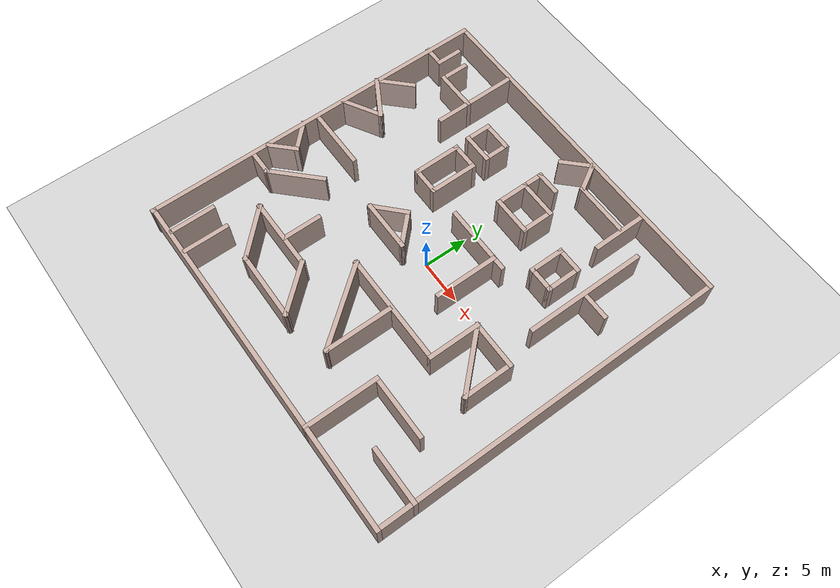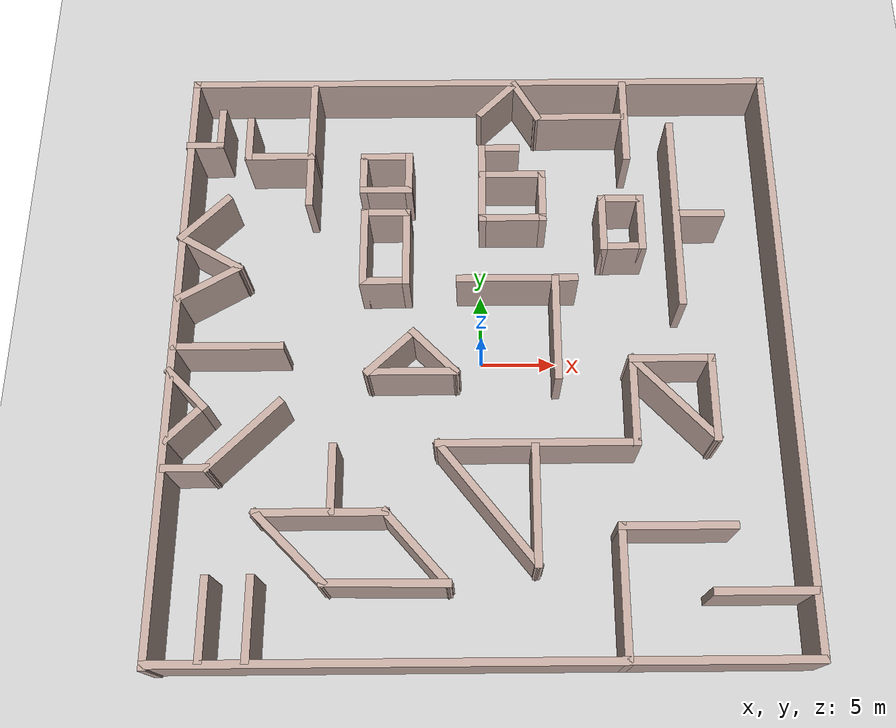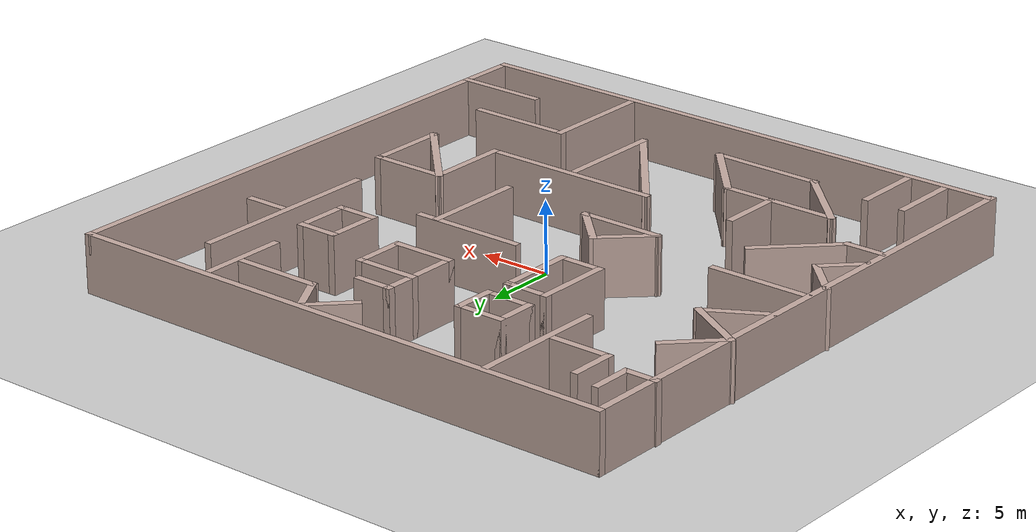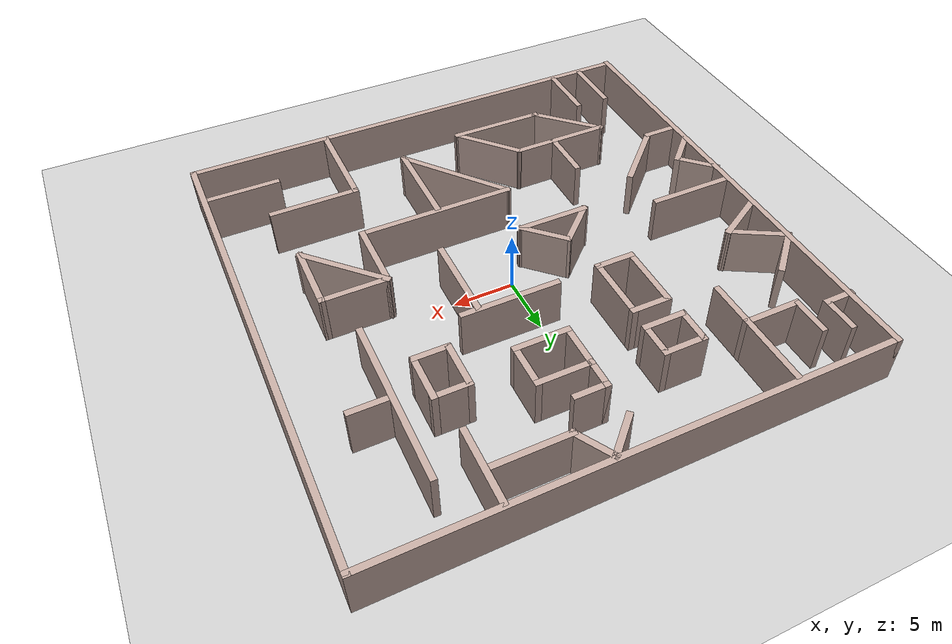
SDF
<sdf version="1.7">
 <world name="default">
  <plugin name="ros_interface_plugin" filename="librotors_gazebo_ros_interface_plugin.so"/>
  <light name="sun" type="directional">
   <pose>0 0 10 0 -0 0</pose>
   <diffuse>0.8 0.8 0.8 1</diffuse>
   <specular>0.2 0.2 0.2 1</specular>
   <attenuation>
    <range>1000</range>
    <constant>0.9</constant>
    <linear>0.01</linear>
    <quadratic>0.001</quadratic>
   </attenuation>
   <direction>-0.5 0.1 -0.9</direction>
   <spot><inner_angle>0</inner_angle><outer_angle>0</outer_angle><falloff>0</falloff></spot>
  </light>
  <model name="ground_plane">
   <static>1</static>
   <link name="link">
    <collision name="collision">
     <geometry><plane><normal>0 0 1</normal><size>100 100</size></plane></geometry>
     <surface><friction><ode><mu>100</mu><mu2>50</mu2></ode></friction></surface>
    </collision>
    <visual name="visual">
     <cast_shadows>0</cast_shadows>
     <geometry><plane><normal>0 0 1</normal><size>100 100</size></plane></geometry>
     <material>
      <script><uri>file://media/materials/scripts/gazebo.material</uri><name>Gazebo/Grey</name></script>
     </material>
    </visual>
   </link>
  </model>
  <gravity>0 0 -9.8</gravity>
  <magnetic_field>6e-06 2.3e-05 -4.2e-05</magnetic_field>
  <atmosphere type="adiabatic"/>
  <physics type="ode">
   <max_step_size>0.001</max_step_size>
   <real_time_factor>1</real_time_factor>
   <real_time_update_rate>1000</real_time_update_rate>
  </physics>
  <scene><ambient>0.4 0.4 0.4 1</ambient><background>0.7 0.7 0.7 1</background><shadows>1</shadows></scene>
  <spherical_coordinates>
   <surface_model>EARTH_WGS84</surface_model>
   <latitude_deg>0</latitude_deg>
   <longitude_deg>0</longitude_deg>
   <elevation>0</elevation>
   <heading_deg>0</heading_deg>
  </spherical_coordinates>
  <model name="Untitled">
   <pose>-0.092304 -0.038631 0 0 -0 0</pose>
   <link name="Wall_101">
    <collision name="Wall_101_Collision">
     <geometry><box><size>4.85046 0.5 4</size></box></geometry>
     <pose>0 0 2 0 -0 0</pose>
    </collision>
    <visual name="Wall_101_Visual">
     <pose>0 0 2 0 -0 0</pose>
     <geometry><box><size>4.85046 0.5 4</size></box></geometry>
     <material>
      <script><uri>file://media/materials/scripts/gazebo.material</uri><name>Gazebo/Grey</name></script>
      <ambient>0.760784 0.662745 0.627451 1</ambient>
     </material>
     <meta><layer>0</layer></meta>
    </visual>
    <pose>-13.7207 14.1376 0 0 -0 3.14159</pose>
   </link>
   <link name="Wall_102">
    <collision name="Wall_102_Collision">
     <geometry><box><size>3.34967 0.5 4</size></box></geometry>
     <pose>0 0 2 0 -0 0</pose>
    </collision>
    <visual name="Wall_102_Visual">
     <pose>0 0 2 0 -0 0</pose>
     <geometry><box><size>3.34967 0.5 4</size></box></geometry>
     <material>
      <script><uri>file://media/materials/scripts/gazebo.material</uri><name>Gazebo/Grey</name></script>
      <ambient>0.760784 0.662745 0.627451 1</ambient>
     </material>
     <meta><layer>0</layer></meta>
    </visual>
    <pose>-15.8957 15.5626 0 0 -0 1.5708</pose>
   </link>
   <link name="Wall_104">
    <collision name="Wall_104_Collision">
     <geometry><box><size>2.6 0.5 4</size></box></geometry>
     <pose>0 0 2 0 -0 0</pose>
    </collision>
    <visual name="Wall_104_Visual">
     <pose>0 0 2 0 -0 0</pose>
     <geometry><box><size>2.6 0.5 4</size></box></geometry>
     <material>
      <script><uri>file://media/materials/scripts/gazebo.material</uri><name>Gazebo/Grey</name></script>
      <ambient>0.760784 0.662745 0.627451 1</ambient>
     </material>
     <meta><layer>0</layer></meta>
    </visual>
    <pose>-18.9597 15.0576 0 0 -0 0</pose>
   </link>
   <link name="Wall_106">
    <collision name="Wall_106_Collision">
     <geometry><box><size>3.09967 0.5 4</size></box></geometry>
     <pose>0 0 2 0 -0 0</pose>
    </collision>
    <visual name="Wall_106_Visual">
     <pose>0 0 2 0 -0 0</pose>
     <geometry><box><size>3.09967 0.5 4</size></box></geometry>
     <material>
      <script><uri>file://media/materials/scripts/gazebo.material</uri><name>Gazebo/Grey</name></script>
      <ambient>0.760784 0.662745 0.627451 1</ambient>
     </material>
     <meta><layer>0</layer></meta>
    </visual>
    <pose>-17.9097 16.3576 0 0 -0 1.5708</pose>
   </link>
   <link name="Wall_108">
    <collision name="Wall_108_Collision">
     <geometry><box><size>4.84982 0.5 4</size></box></geometry>
     <pose>0 0 2 0 -0 0</pose>
    </collision>
    <visual name="Wall_108_Visual">
     <pose>0 0 2 0 -0 0</pose>
     <geometry><box><size>4.84982 0.5 4</size></box></geometry>
     <material>
      <script><uri>file://media/materials/scripts/gazebo.material</uri><name>Gazebo/Grey</name></script>
      <ambient>0.760784 0.662745 0.627451 1</ambient>
     </material>
     <meta><layer>0</layer></meta>
    </visual>
    <pose>-17.8882 4.56913 0 0 -0 0.523623</pose>
   </link>
   <link name="Wall_109">
    <collision name="Wall_109_Collision">
     <geometry><box><size>5.09976 0.5 4</size></box></geometry>
     <pose>0 0 2 0 -0 0</pose>
    </collision>
    <visual name="Wall_109_Visual">
     <pose>0 0 2 0 -0 0</pose>
     <geometry><box><size>5.09976 0.5 4</size></box></geometry>
     <material>
      <script><uri>file://media/materials/scripts/gazebo.material</uri><name>Gazebo/Grey</name></script>
      <ambient>0.760784 0.662745 0.627451 1</ambient>
     </material>
     <meta><layer>0</layer></meta>
    </visual>
    <pose>-17.9967 6.80663 0 0 -0 2.61802</pose>
   </link>
   <link name="Wall_110">
    <collision name="Wall_110_Collision">
     <geometry><box><size>4.59996 0.5 4</size></box></geometry>
     <pose>0 0 2 0 -0 0</pose>
    </collision>
    <visual name="Wall_110_Visual">
     <pose>0 0 2 0 -0 0</pose>
     <geometry><box><size>4.59996 0.5 4</size></box></geometry>
     <material>
      <script><uri>file://media/materials/scripts/gazebo.material</uri><name>Gazebo/Grey</name></script>
      <ambient>0.760784 0.662745 0.627451 1</ambient>
     </material>
     <meta><layer>0</layer></meta>
    </visual>
    <pose>-18.5392 9.40613 0 0 -0 0.785398</pose>
   </link>
   <link name="Wall_112">
    <collision name="Wall_112_Collision">
     <geometry><box><size>3.6 0.5 4</size></box></geometry>
     <pose>0 0 2 0 -0 0</pose>
    </collision>
    <visual name="Wall_112_Visual">
     <pose>0 0 2 0 -0 0</pose>
     <geometry><box><size>3.6 0.5 4</size></box></geometry>
     <material>
      <script><uri>file://media/materials/scripts/gazebo.material</uri><name>Gazebo/Grey</name></script>
      <ambient>0.760784 0.662745 0.627451 1</ambient>
     </material>
     <meta><layer>0</layer></meta>
    </visual>
    <pose>-6.3267 14.0556 0 0 -0 0</pose>
   </link>
   <link name="Wall_113">
    <collision name="Wall_113_Collision">
     <geometry><box><size>3.10047 0.5 4</size></box></geometry>
     <pose>0 0 2 0 -0 0</pose>
    </collision>
    <visual name="Wall_113_Visual">
     <pose>0 0 2 0 -0 0</pose>
     <geometry><box><size>3.10047 0.5 4</size></box></geometry>
     <material>
      <script><uri>file://media/materials/scripts/gazebo.material</uri><name>Gazebo/Grey</name></script>
      <ambient>0.760784 0.662745 0.627451 1</ambient>
     </material>
     <meta><layer>0</layer></meta>
    </visual>
    <pose>-4.7767 12.7556 0 0 -0 -1.5708</pose>
   </link>
   <link name="Wall_114">
    <collision name="Wall_114_Collision">
     <geometry><box><size>3.6 0.5 4</size></box></geometry>
     <pose>0 0 2 0 -0 0</pose>
    </collision>
    <visual name="Wall_114_Visual">
     <pose>0 0 2 0 -0 0</pose>
     <geometry><box><size>3.6 0.5 4</size></box></geometry>
     <material>
      <script><uri>file://media/materials/scripts/gazebo.material</uri><name>Gazebo/Grey</name></script>
      <ambient>0.760784 0.662745 0.627451 1</ambient>
     </material>
     <meta><layer>0</layer></meta>
    </visual>
    <pose>-6.3267 11.4556 0 0 -0 3.14159</pose>
   </link>
   <link name="Wall_115">
    <collision name="Wall_115_Collision">
     <geometry><box><size>3.1 0.5 4</size></box></geometry>
     <pose>0 0 2 0 -0 0</pose>
    </collision>
    <visual name="Wall_115_Visual">
     <pose>0 0 2 0 -0 0</pose>
     <geometry><box><size>3.1 0.5 4</size></box></geometry>
     <material>
      <script><uri>file://media/materials/scripts/gazebo.material</uri><name>Gazebo/Grey</name></script>
      <ambient>0.760784 0.662745 0.627451 1</ambient>
     </material>
     <meta><layer>0</layer></meta>
    </visual>
    <pose>-7.8767 12.7556 0 0 -0 1.5708</pose>
   </link>
   <link name="Wall_117">
    <collision name="Wall_117_Collision">
     <geometry><box><size>5.6 0.5 4</size></box></geometry>
     <pose>0 0 2 0 -0 0</pose>
    </collision>
    <visual name="Wall_117_Visual">
     <pose>0 0 2 0 -0 0</pose>
     <geometry><box><size>5.6 0.5 4</size></box></geometry>
     <material>
      <script><uri>file://media/materials/scripts/gazebo.material</uri><name>Gazebo/Grey</name></script>
      <ambient>0.760784 0.662745 0.627451 1</ambient>
     </material>
     <meta><layer>0</layer></meta>
    </visual>
    <pose>-7.7247 7.15863 0 0 -0 -1.5708</pose>
   </link>
   <link name="Wall_118">
    <collision name="Wall_118_Collision">
     <geometry><box><size>3.35 0.5 4</size></box></geometry>
     <pose>0 0 2 0 -0 0</pose>
    </collision>
    <visual name="Wall_118_Visual">
     <pose>0 0 2 0 -0 0</pose>
     <geometry><box><size>3.35 0.5 4</size></box></geometry>
     <material>
      <script><uri>file://media/materials/scripts/gazebo.material</uri><name>Gazebo/Grey</name></script>
      <ambient>0.760784 0.662745 0.627451 1</ambient>
     </material>
     <meta><layer>0</layer></meta>
    </visual>
    <pose>-6.2997 4.60863 0 0 -0 0</pose>
   </link>
   <link name="Wall_119">
    <collision name="Wall_119_Collision">
     <geometry><box><size>5.6004 0.5 4</size></box></geometry>
     <pose>0 0 2 0 -0 0</pose>
    </collision>
    <visual name="Wall_119_Visual">
     <pose>0 0 2 0 -0 0</pose>
     <geometry><box><size>5.6004 0.5 4</size></box></geometry>
     <material>
      <script><uri>file://media/materials/scripts/gazebo.material</uri><name>Gazebo/Grey</name></script>
      <ambient>0.760784 0.662745 0.627451 1</ambient>
     </material>
     <meta><layer>0</layer></meta>
    </visual>
    <pose>-4.8747 7.15863 0 0 -0 1.5708</pose>
   </link>
   <link name="Wall_12">
    <collision name="Wall_12_Collision">
     <geometry><box><size>6.5 0.5 4</size></box></geometry>
     <pose>0 0 2 0 -0 0</pose>
    </collision>
    <visual name="Wall_12_Visual">
     <pose>0 0 2 0 -0 0</pose>
     <geometry><box><size>6.5 0.5 4</size></box></geometry>
     <material>
      <script><uri>file://media/materials/scripts/gazebo.material</uri><name>Gazebo/Grey</name></script>
      <ambient>0.760784 0.662745 0.627451 1</ambient>
     </material>
     <meta><layer>0</layer></meta>
    </visual>
    <pose>17.0923 -15.9614 0 0 -0 0</pose>
   </link>
   <link name="Wall_120">
    <collision name="Wall_120_Collision">
     <geometry><box><size>3.35 0.5 4</size></box></geometry>
     <pose>0 0 2 0 -0 0</pose>
    </collision>
    <visual name="Wall_120_Visual">
     <pose>0 0 2 0 -0 0</pose>
     <geometry><box><size>3.35 0.5 4</size></box></geometry>
     <material>
      <script><uri>file://media/materials/scripts/gazebo.material</uri><name>Gazebo/Grey</name></script>
      <ambient>0.760784 0.662745 0.627451 1</ambient>
     </material>
     <meta><layer>0</layer></meta>
    </visual>
    <pose>-6.2997 9.70863 0 0 -0 3.14159</pose>
   </link>
   <link name="Wall_122">
    <collision name="Wall_122_Collision">
     <geometry><box><size>4.1 0.5 4</size></box></geometry>
     <pose>0 0 2 0 -0 0</pose>
    </collision>
    <visual name="Wall_122_Visual">
     <pose>0 0 2 0 -0 0</pose>
     <geometry><box><size>4.1 0.5 4</size></box></geometry>
     <material>
      <script><uri>file://media/materials/scripts/gazebo.material</uri><name>Gazebo/Grey</name></script>
      <ambient>0.760784 0.662745 0.627451 1</ambient>
     </material>
     <meta><layer>0</layer></meta>
    </visual>
    <pose>8.3713 8.85563 0 0 -0 -1.5708</pose>
   </link>
   <link name="Wall_123">
    <collision name="Wall_123_Collision">
     <geometry><box><size>3.1 0.5 4</size></box></geometry>
     <pose>0 0 2 0 -0 0</pose>
    </collision>
    <visual name="Wall_123_Visual">
     <pose>0 0 2 0 -0 0</pose>
     <geometry><box><size>3.1 0.5 4</size></box></geometry>
     <material>
      <script><uri>file://media/materials/scripts/gazebo.material</uri><name>Gazebo/Grey</name></script>
      <ambient>0.760784 0.662745 0.627451 1</ambient>
     </material>
     <meta><layer>0</layer></meta>
    </visual>
    <pose>9.67131 7.05563 0 0 -0 0</pose>
   </link>
   <link name="Wall_124">
    <collision name="Wall_124_Collision">
     <geometry><box><size>4.1 0.5 4</size></box></geometry>
     <pose>0 0 2 0 -0 0</pose>
    </collision>
    <visual name="Wall_124_Visual">
     <pose>0 0 2 0 -0 0</pose>
     <geometry><box><size>4.1 0.5 4</size></box></geometry>
     <material>
      <script><uri>file://media/materials/scripts/gazebo.material</uri><name>Gazebo/Grey</name></script>
      <ambient>0.760784 0.662745 0.627451 1</ambient>
     </material>
     <meta><layer>0</layer></meta>
    </visual>
    <pose>10.9713 8.85563 0 0 -0 1.5708</pose>
   </link>
   <link name="Wall_125">
    <collision name="Wall_125_Collision">
     <geometry><box><size>3.1 0.5 4</size></box></geometry>
     <pose>0 0 2 0 -0 0</pose>
    </collision>
    <visual name="Wall_125_Visual">
     <pose>0 0 2 0 -0 0</pose>
     <geometry><box><size>3.1 0.5 4</size></box></geometry>
     <material>
      <script><uri>file://media/materials/scripts/gazebo.material</uri><name>Gazebo/Grey</name></script>
      <ambient>0.760784 0.662745 0.627451 1</ambient>
     </material>
     <meta><layer>0</layer></meta>
    </visual>
    <pose>9.67131 10.6556 0 0 -0 3.14159</pose>
   </link>
   <link name="Wall_16">
    <collision name="Wall_16_Collision">
     <geometry><box><size>7.435 0.5 4</size></box></geometry>
     <pose>0 0 2 0 -0 0</pose>
    </collision>
    <visual name="Wall_16_Visual">
     <pose>0 0 2 0 -0 0</pose>
     <geometry><box><size>7.435 0.5 4</size></box></geometry>
     <material>
      <script><uri>file://media/materials/scripts/gazebo.material</uri><name>Gazebo/Grey</name></script>
      <ambient>0.760784 0.662745 0.627451 1</ambient>
     </material>
     <meta><layer>0</layer></meta>
    </visual>
    <pose>12.0598 -11.9614 0 0 -0 3.14159</pose>
   </link>
   <link name="Wall_17">
    <collision name="Wall_17_Collision">
     <geometry><box><size>8.5 0.5 4</size></box></geometry>
     <pose>0 0 2 0 -0 0</pose>
    </collision>
    <visual name="Wall_17_Visual">
     <pose>0 0 2 0 -0 0</pose>
     <geometry><box><size>8.5 0.5 4</size></box></geometry>
     <material>
      <script><uri>file://media/materials/scripts/gazebo.material</uri><name>Gazebo/Grey</name></script>
      <ambient>0.760784 0.662745 0.627451 1</ambient>
     </material>
     <meta><layer>0</layer></meta>
    </visual>
    <pose>8.5923 -15.9614 0 0 -0 -1.5708</pose>
   </link>
   <link name="Wall_21">
    <collision name="Wall_21_Collision">
     <geometry><box><size>7.85035 0.5 4</size></box></geometry>
     <pose>0 0 2 0 -0 0</pose>
    </collision>
    <visual name="Wall_21_Visual">
     <pose>0 0 2 0 -0 0</pose>
     <geometry><box><size>7.85035 0.5 4</size></box></geometry>
     <material>
      <script><uri>file://media/materials/scripts/gazebo.material</uri><name>Gazebo/Grey</name></script>
      <ambient>0.760784 0.662745 0.627451 1</ambient>
     </material>
     <meta><layer>0</layer></meta>
    </visual>
    <pose>3.4333 -10.5774 0 0 -0 -1.5708</pose>
   </link>
   <link name="Wall_22">
    <collision name="Wall_22_Collision">
     <geometry><box><size>10.2723 0.5 4</size></box></geometry>
     <pose>0 0 2 0 -0 0</pose>
    </collision>
    <visual name="Wall_22_Visual">
     <pose>0 0 2 0 -0 0</pose>
     <geometry><box><size>10.2723 0.5 4</size></box></geometry>
     <material>
      <script><uri>file://media/materials/scripts/gazebo.material</uri><name>Gazebo/Grey</name></script>
      <ambient>0.760784 0.662745 0.627451 1</ambient>
     </material>
     <meta><layer>0</layer></meta>
    </visual>
    <pose>0.384804 -10.4339 0 0 -0 2.24453</pose>
   </link>
   <link name="Wall_28">
    <collision name="Wall_28_Collision">
     <geometry><box><size>6.1 0.5 4</size></box></geometry>
     <pose>0 0 2 0 -0 0</pose>
    </collision>
    <visual name="Wall_28_Visual">
     <pose>0 0 2 0 -0 0</pose>
     <geometry><box><size>6.1 0.5 4</size></box></geometry>
     <material>
      <script><uri>file://media/materials/scripts/gazebo.material</uri><name>Gazebo/Grey</name></script>
      <ambient>0.760784 0.662745 0.627451 1</ambient>
     </material>
     <meta><layer>0</layer></meta>
    </visual>
    <pose>9.8363 -3.81537 0 0 -0 1.5708</pose>
   </link>
   <link name="Wall_29">
    <collision name="Wall_29_Collision">
     <geometry><box><size>5.6 0.5 4</size></box></geometry>
     <pose>0 0 2 0 -0 0</pose>
    </collision>
    <visual name="Wall_29_Visual">
     <pose>0 0 2 0 -0 0</pose>
     <geometry><box><size>5.6 0.5 4</size></box></geometry>
     <material>
      <script><uri>file://media/materials/scripts/gazebo.material</uri><name>Gazebo/Grey</name></script>
      <ambient>0.760784 0.662745 0.627451 1</ambient>
     </material>
     <meta><layer>0</layer></meta>
    </visual>
    <pose>12.3863 -1.01537 0 0 -0 0</pose>
   </link>
   <link name="Wall_30">
    <collision name="Wall_30_Collision">
     <geometry><box><size>5.85 0.5 4</size></box></geometry>
     <pose>0 0 2 0 -0 0</pose>
    </collision>
    <visual name="Wall_30_Visual">
     <pose>0 0 2 0 -0 0</pose>
     <geometry><box><size>5.85 0.5 4</size></box></geometry>
     <material>
      <script><uri>file://media/materials/scripts/gazebo.material</uri><name>Gazebo/Grey</name></script>
      <ambient>0.760784 0.662745 0.627451 1</ambient>
     </material>
     <meta><layer>0</layer></meta>
    </visual>
    <pose>14.9363 -3.69037 0 0 -0 -1.5708</pose>
   </link>
   <link name="Wall_31">
    <collision name="Wall_31_Collision">
     <geometry><box><size>7.89139 0.5 4</size></box></geometry>
     <pose>0 0 2 0 -0 0</pose>
    </collision>
    <visual name="Wall_31_Visual">
     <pose>0 0 2 0 -0 0</pose>
     <geometry><box><size>7.89139 0.5 4</size></box></geometry>
     <material>
      <script><uri>file://media/materials/scripts/gazebo.material</uri><name>Gazebo/Grey</name></script>
      <ambient>0.760784 0.662745 0.627451 1</ambient>
     </material>
     <meta><layer>0</layer></meta>
    </visual>
    <pose>12.3863 -3.69037 0 0 -0 2.33228</pose>
   </link>
   <link name="Wall_35">
    <collision name="Wall_35_Collision">
     <geometry><box><size>8.5 0.5 4</size></box></geometry>
     <pose>0 0 2 0 -0 0</pose>
    </collision>
    <visual name="Wall_35_Visual">
     <pose>0 0 2 0 -0 0</pose>
     <geometry><box><size>8.5 0.5 4</size></box></geometry>
     <material>
      <script><uri>file://media/materials/scripts/gazebo.material</uri><name>Gazebo/Grey</name></script>
      <ambient>0.760784 0.662745 0.627451 1</ambient>
     </material>
     <meta><layer>0</layer></meta>
    </visual>
    <pose>-9.9077 -10.9614 0 0 -0 3.14159</pose>
   </link>
   <link name="Wall_36">
    <collision name="Wall_36_Collision">
     <geometry><box><size>6.5995 0.5 4</size></box></geometry>
     <pose>0 0 2 0 -0 0</pose>
    </collision>
    <visual name="Wall_36_Visual">
     <pose>0 0 2 0 -0 0</pose>
     <geometry><box><size>6.5995 0.5 4</size></box></geometry>
     <material>
      <script><uri>file://media/materials/scripts/gazebo.material</uri><name>Gazebo/Grey</name></script>
      <ambient>0.760784 0.662745 0.627451 1</ambient>
     </material>
     <meta><layer>0</layer></meta>
    </visual>
    <pose>-11.7512 -13.1179 0 0 -0 -0.785398</pose>
   </link>
   <link name="Wall_37">
    <collision name="Wall_37_Collision">
     <geometry><box><size>8.05435 0.5 4</size></box></geometry>
     <pose>0 0 2 0 -0 0</pose>
    </collision>
    <visual name="Wall_37_Visual">
     <pose>0 0 2 0 -0 0</pose>
     <geometry><box><size>8.05435 0.5 4</size></box></geometry>
     <material>
      <script><uri>file://media/materials/scripts/gazebo.material</uri><name>Gazebo/Grey</name></script>
      <ambient>0.760784 0.662745 0.627451 1</ambient>
     </material>
     <meta><layer>0</layer></meta>
    </visual>
    <pose>-5.8177 -15.3109 0 0 -0 -0.009663</pose>
   </link>
   <link name="Wall_40">
    <collision name="Wall_40_Collision">
     <geometry><box><size>6.34728 0.5 4</size></box></geometry>
     <pose>0 0 2 0 -0 0</pose>
    </collision>
    <visual name="Wall_40_Visual">
     <pose>0 0 2 0 -0 0</pose>
     <geometry><box><size>6.34728 0.5 4</size></box></geometry>
     <material>
      <script><uri>file://media/materials/scripts/gazebo.material</uri><name>Gazebo/Grey</name></script>
      <ambient>0.760784 0.662745 0.627451 1</ambient>
     </material>
     <meta><layer>0</layer></meta>
    </visual>
    <pose>-3.9742 -13.1544 0 0 -0 2.29339</pose>
   </link>
   <link name="Wall_45">
    <collision name="Wall_45_Collision">
     <geometry><box><size>5.25 0.5 4</size></box></geometry>
     <pose>0 0 2 0 -0 0</pose>
    </collision>
    <visual name="Wall_45_Visual">
     <pose>0 0 2 0 -0 0</pose>
     <geometry><box><size>5.25 0.5 4</size></box></geometry>
     <material>
      <script><uri>file://media/materials/scripts/gazebo.material</uri><name>Gazebo/Grey</name></script>
      <ambient>0.760784 0.662745 0.627451 1</ambient>
     </material>
     <meta><layer>0</layer></meta>
    </visual>
    <pose>-13.9077 -17.3364 0 0 -0 1.5708</pose>
   </link>
   <link name="Wall_48">
    <collision name="Wall_48_Collision">
     <geometry><box><size>6.63212 0.5 4</size></box></geometry>
     <pose>0 0 2 0 -0 0</pose>
    </collision>
    <visual name="Wall_48_Visual">
     <pose>0 0 2 0 -0 0</pose>
     <geometry><box><size>6.63212 0.5 4</size></box></geometry>
     <material>
      <script><uri>file://media/materials/scripts/gazebo.material</uri><name>Gazebo/Grey</name></script>
      <ambient>0.760784 0.662745 0.627451 1</ambient>
     </material>
     <meta><layer>0</layer></meta>
    </visual>
    <pose>-14.9552 -5.93887 0 0 -0 -2.3615</pose>
   </link>
   <link name="Wall_49">
    <collision name="Wall_49_Collision">
     <geometry><box><size>3.1 0.5 4</size></box></geometry>
     <pose>0 0 2 0 -0 0</pose>
    </collision>
    <visual name="Wall_49_Visual">
     <pose>0 0 2 0 -0 0</pose>
     <geometry><box><size>3.1 0.5 4</size></box></geometry>
     <material>
      <script><uri>file://media/materials/scripts/gazebo.material</uri><name>Gazebo/Grey</name></script>
      <ambient>0.760784 0.662745 0.627451 1</ambient>
     </material>
     <meta><layer>0</layer></meta>
    </visual>
    <pose>-18.4347 -8.09537 0 0 -0 3.14159</pose>
   </link>
   <link name="Wall_52">
    <collision name="Wall_52_Collision">
     <geometry><box><size>7.35 0.5 4</size></box></geometry>
     <pose>0 0 2 0 -0 0</pose>
    </collision>
    <visual name="Wall_52_Visual">
     <pose>0 0 2 0 -0 0</pose>
     <geometry><box><size>7.35 0.5 4</size></box></geometry>
     <material>
      <script><uri>file://media/materials/scripts/gazebo.material</uri><name>Gazebo/Grey</name></script>
      <ambient>0.760784 0.662745 0.627451 1</ambient>
     </material>
     <meta><layer>0</layer></meta>
    </visual>
    <pose>-16.3687 0.038631 0 0 -0 3.14159</pose>
   </link>
   <link name="Wall_54">
    <collision name="Wall_54_Collision">
     <geometry><box><size>3.84973 0.5 4</size></box></geometry>
     <pose>0 0 2 0 -0 0</pose>
    </collision>
    <visual name="Wall_54_Visual">
     <pose>0 0 2 0 -0 0</pose>
     <geometry><box><size>3.84973 0.5 4</size></box></geometry>
     <material>
      <script><uri>file://media/materials/scripts/gazebo.material</uri><name>Gazebo/Grey</name></script>
      <ambient>0.760784 0.662745 0.627451 1</ambient>
     </material>
     <meta><layer>0</layer></meta>
    </visual>
    <pose>-18.7952 -2.86237 0 0 -0 -0.785187</pose>
   </link>
   <link name="Wall_55">
    <collision name="Wall_55_Collision">
     <geometry><box><size>3.60049 0.5 4</size></box></geometry>
     <pose>0 0 2 0 -0 0</pose>
    </collision>
    <visual name="Wall_55_Visual">
     <pose>0 0 2 0 -0 0</pose>
     <geometry><box><size>3.60049 0.5 4</size></box></geometry>
     <material>
      <script><uri>file://media/materials/scripts/gazebo.material</uri><name>Gazebo/Grey</name></script>
      <ambient>0.760784 0.662745 0.627451 1</ambient>
     </material>
     <meta><layer>0</layer></meta>
    </visual>
    <pose>-18.7067 -5.14237 0 0 -0 -2.35619</pose>
   </link>
   <link name="Wall_57">
    <collision name="Wall_57_Collision">
     <geometry><box><size>4.60026 0.5 4</size></box></geometry>
     <pose>0 0 2 0 -0 0</pose>
    </collision>
    <visual name="Wall_57_Visual">
     <pose>0 0 2 0 -0 0</pose>
     <geometry><box><size>4.60026 0.5 4</size></box></geometry>
     <material>
      <script><uri>file://media/materials/scripts/gazebo.material</uri><name>Gazebo/Grey</name></script>
      <ambient>0.760784 0.662745 0.627451 1</ambient>
     </material>
     <meta><layer>0</layer></meta>
    </visual>
    <pose>-9.27469 -8.85037 0 0 -0 1.5708</pose>
   </link>
   <link name="Wall_66">
    <collision name="Wall_66_Collision">
     <geometry><box><size>7.35009 0.5 4</size></box></geometry>
     <pose>0 0 2 0 -0 0</pose>
    </collision>
    <visual name="Wall_66_Visual">
     <pose>0 0 2 0 -0 0</pose>
     <geometry><box><size>7.35009 0.5 4</size></box></geometry>
     <material>
      <script><uri>file://media/materials/scripts/gazebo.material</uri><name>Gazebo/Grey</name></script>
      <ambient>0.760784 0.662745 0.627451 1</ambient>
     </material>
     <meta><layer>0</layer></meta>
    </visual>
    <pose>5.0393 1.27163 0 0 -0 -1.5708</pose>
   </link>
   <link name="Wall_70">
    <collision name="Wall_70_Collision">
     <geometry><box><size>8.09994 0.5 4</size></box></geometry>
     <pose>0 0 2 0 -0 0</pose>
    </collision>
    <visual name="Wall_70_Visual">
     <pose>0 0 2 0 -0 0</pose>
     <geometry><box><size>8.09994 0.5 4</size></box></geometry>
     <material>
      <script><uri>file://media/materials/scripts/gazebo.material</uri><name>Gazebo/Grey</name></script>
      <ambient>0.760784 0.662745 0.627451 1</ambient>
     </material>
     <meta><layer>0</layer></meta>
    </visual>
    <pose>2.5103 4.75463 0 0 -0 3.14159</pose>
   </link>
   <link name="Wall_73">
    <collision name="Wall_73_Collision">
     <geometry><box><size>13.8498 0.5 4</size></box></geometry>
     <pose>0 0 2 0 -0 0</pose>
    </collision>
    <visual name="Wall_73_Visual">
     <pose>0 0 2 0 -0 0</pose>
     <geometry><box><size>13.8498 0.5 4</size></box></geometry>
     <material>
      <script><uri>file://media/materials/scripts/gazebo.material</uri><name>Gazebo/Grey</name></script>
      <ambient>0.760784 0.662745 0.627451 1</ambient>
     </material>
     <meta><layer>0</layer></meta>
    </visual>
    <pose>13.3803 9.68463 0 0 -0 1.5708</pose>
   </link>
   <link name="Wall_75">
    <collision name="Wall_75_Collision">
     <geometry><box><size>3.35001 0.5 4</size></box></geometry>
     <pose>0 0 2 0 -0 0</pose>
    </collision>
    <visual name="Wall_75_Visual">
     <pose>0 0 2 0 -0 0</pose>
     <geometry><box><size>3.35001 0.5 4</size></box></geometry>
     <material>
      <script><uri>file://media/materials/scripts/gazebo.material</uri><name>Gazebo/Grey</name></script>
      <ambient>0.760784 0.662745 0.627451 1</ambient>
     </material>
     <meta><layer>0</layer></meta>
    </visual>
    <pose>14.9833 9.47863 0 0 -0 0</pose>
   </link>
   <link name="Wall_77">
    <collision name="Wall_77_Collision">
     <geometry><box><size>6.1002 0.5 4</size></box></geometry>
     <pose>0 0 2 0 -0 0</pose>
    </collision>
    <visual name="Wall_77_Visual">
     <pose>0 0 2 0 -0 0</pose>
     <geometry><box><size>6.1002 0.5 4</size></box></geometry>
     <material>
      <script><uri>file://media/materials/scripts/gazebo.material</uri><name>Gazebo/Grey</name></script>
      <ambient>0.760784 0.662745 0.627451 1</ambient>
     </material>
     <meta><layer>0</layer></meta>
    </visual>
    <pose>-4.4067 -1.79137 0 0 -0 3.14159</pose>
   </link>
   <link name="Wall_78">
    <collision name="Wall_78_Collision">
     <geometry><box><size>4.46129 0.5 4</size></box></geometry>
     <pose>0 0 2 0 -0 0</pose>
    </collision>
    <visual name="Wall_78_Visual">
     <pose>0 0 2 0 -0 0</pose>
     <geometry><box><size>4.46129 0.5 4</size></box></geometry>
     <material>
      <script><uri>file://media/materials/scripts/gazebo.material</uri><name>Gazebo/Grey</name></script>
      <ambient>0.760784 0.662745 0.627451 1</ambient>
     </material>
     <meta><layer>0</layer></meta>
    </visual>
    <pose>-5.7682 -0.429869 0 0 -0 0.757905</pose>
   </link>
   <link name="Wall_79">
    <collision name="Wall_79_Collision">
     <geometry><box><size>4.3509 0.5 4</size></box></geometry>
     <pose>0 0 2 0 -0 0</pose>
    </collision>
    <visual name="Wall_79_Visual">
     <pose>0 0 2 0 -0 0</pose>
     <geometry><box><size>4.3509 0.5 4</size></box></geometry>
     <material>
      <script><uri>file://media/materials/scripts/gazebo.material</uri><name>Gazebo/Grey</name></script>
      <ambient>0.760784 0.662745 0.627451 1</ambient>
     </material>
     <meta><layer>0</layer></meta>
    </visual>
    <pose>-2.9682 -0.429869 0 0 -0 -0.785398</pose>
   </link>
   <link name="Wall_8">
    <collision name="Wall_8_Collision">
     <geometry><box><size>13 0.5 4</size></box></geometry>
     <pose>0 0 2 0 -0 0</pose>
    </collision>
    <visual name="Wall_8_Visual">
     <pose>0 0 2 0 -0 0</pose>
     <geometry><box><size>13 0.5 4</size></box></geometry>
     <material>
      <script><uri>file://media/materials/scripts/gazebo.material</uri><name>Gazebo/Grey</name></script>
      <ambient>0.760784 0.662745 0.627451 1</ambient>
     </material>
     <meta><layer>0</layer></meta>
    </visual>
    <pose>3.5863 -6.61537 0 0 -0 0</pose>
   </link>
   <link name="Wall_81">
    <collision name="Wall_81_Collision">
     <geometry><box><size>5.22 0.5 4</size></box></geometry>
     <pose>0 0 2 0 -0 0</pose>
    </collision>
    <visual name="Wall_81_Visual">
     <pose>0 0 2 0 -0 0</pose>
     <geometry><box><size>5.22 0.5 4</size></box></geometry>
     <material>
      <script><uri>file://media/materials/scripts/gazebo.material</uri><name>Gazebo/Grey</name></script>
      <ambient>0.760784 0.662745 0.627451 1</ambient>
     </material>
     <meta><layer>0</layer></meta>
    </visual>
    <pose>-16.6657 -17.3214 0 0 -0 1.5708</pose>
   </link>
   <link name="Wall_84">
    <collision name="Wall_84_Collision">
     <geometry><box><size>6.35012 0.5 4</size></box></geometry>
     <pose>0 0 2 0 -0 0</pose>
    </collision>
    <visual name="Wall_84_Visual">
     <pose>0 0 2 0 -0 0</pose>
     <geometry><box><size>6.35012 0.5 4</size></box></geometry>
     <material>
      <script><uri>file://media/materials/scripts/gazebo.material</uri><name>Gazebo/Grey</name></script>
      <ambient>0.760784 0.662745 0.627451 1</ambient>
     </material>
     <meta><layer>0</layer></meta>
    </visual>
    <pose>10.2563 16.8916 0 0 -0 1.5708</pose>
   </link>
   <link name="Wall_86">
    <collision name="Wall_86_Collision">
     <geometry><box><size>3.85 0.5 4</size></box></geometry>
     <pose>0 0 2 0 -0 0</pose>
    </collision>
    <visual name="Wall_86_Visual">
     <pose>0 0 2 0 -0 0</pose>
     <geometry><box><size>3.85 0.5 4</size></box></geometry>
     <material>
      <script><uri>file://media/materials/scripts/gazebo.material</uri><name>Gazebo/Grey</name></script>
      <ambient>0.760784 0.662745 0.627451 1</ambient>
     </material>
     <meta><layer>0</layer></meta>
    </visual>
    <pose>0.238304 10.9226 0 0 -0 -1.5708</pose>
   </link>
   <link name="Wall_87">
    <collision name="Wall_87_Collision">
     <geometry><box><size>4.6 0.5 4</size></box></geometry>
     <pose>0 0 2 0 -0 0</pose>
    </collision>
    <visual name="Wall_87_Visual">
     <pose>0 0 2 0 -0 0</pose>
     <geometry><box><size>4.6 0.5 4</size></box></geometry>
     <material>
      <script><uri>file://media/materials/scripts/gazebo.material</uri><name>Gazebo/Grey</name></script>
      <ambient>0.760784 0.662745 0.627451 1</ambient>
     </material>
     <meta><layer>0</layer></meta>
    </visual>
    <pose>2.2883 9.24763 0 0 -0 0</pose>
   </link>
   <link name="Wall_89">
    <collision name="Wall_89_Collision">
     <geometry><box><size>4.6 0.5 4</size></box></geometry>
     <pose>0 0 2 0 -0 0</pose>
    </collision>
    <visual name="Wall_89_Visual">
     <pose>0 0 2 0 -0 0</pose>
     <geometry><box><size>4.6 0.5 4</size></box></geometry>
     <material>
      <script><uri>file://media/materials/scripts/gazebo.material</uri><name>Gazebo/Grey</name></script>
      <ambient>0.760784 0.662745 0.627451 1</ambient>
     </material>
     <meta><layer>0</layer></meta>
    </visual>
    <pose>2.2883 12.5976 0 0 -0 0</pose>
   </link>
   <link name="Wall_90">
    <collision name="Wall_90_Collision">
     <geometry><box><size>3.85044 0.5 4</size></box></geometry>
     <pose>0 0 2 0 -0 0</pose>
    </collision>
    <visual name="Wall_90_Visual">
     <pose>0 0 2 0 -0 0</pose>
     <geometry><box><size>3.85044 0.5 4</size></box></geometry>
     <material>
      <script><uri>file://media/materials/scripts/gazebo.material</uri><name>Gazebo/Grey</name></script>
      <ambient>0.760784 0.662745 0.627451 1</ambient>
     </material>
     <meta><layer>0</layer></meta>
    </visual>
    <pose>4.3383 10.9226 0 0 -0 -1.5708</pose>
   </link>
   <link name="Wall_92">
    <collision name="Wall_92_Collision">
     <geometry><box><size>6.35046 0.5 4</size></box></geometry>
     <pose>0 0 2 0 -0 0</pose>
    </collision>
    <visual name="Wall_92_Visual">
     <pose>0 0 2 0 -0 0</pose>
     <geometry><box><size>6.35046 0.5 4</size></box></geometry>
     <material>
      <script><uri>file://media/materials/scripts/gazebo.material</uri><name>Gazebo/Grey</name></script>
      <ambient>0.760784 0.662745 0.627451 1</ambient>
     </material>
     <meta><layer>0</layer></meta>
    </visual>
    <pose>7.0573 17.1736 0 0 -0 3.14159</pose>
   </link>
   <link name="Wall_93">
    <collision name="Wall_93_Collision">
     <geometry><box><size>3.59994 0.5 4</size></box></geometry>
     <pose>0 0 2 0 -0 0</pose>
    </collision>
    <visual name="Wall_93_Visual">
     <pose>0 0 2 0 -0 0</pose>
     <geometry><box><size>3.59994 0.5 4</size></box></geometry>
     <material>
      <script><uri>file://media/materials/scripts/gazebo.material</uri><name>Gazebo/Grey</name></script>
      <ambient>0.760784 0.662745 0.627451 1</ambient>
     </material>
     <meta><layer>0</layer></meta>
    </visual>
    <pose>3.3573 18.5156 0 0 -0 2.0945</pose>
   </link>
   <link name="Wall_94">
    <collision name="Wall_94_Collision">
     <geometry><box><size>3.85008 0.5 4</size></box></geometry>
     <pose>0 0 2 0 -0 0</pose>
    </collision>
    <visual name="Wall_94_Visual">
     <pose>0 0 2 0 -0 0</pose>
     <geometry><box><size>3.85008 0.5 4</size></box></geometry>
     <material>
      <script><uri>file://media/materials/scripts/gazebo.material</uri><name>Gazebo/Grey</name></script>
      <ambient>0.760784 0.662745 0.627451 1</ambient>
     </material>
     <meta><layer>0</layer></meta>
    </visual>
    <pose>1.3978 18.6736 0 0 -0 -2.35641</pose>
   </link>
   <link name="Wall_96">
    <collision name="Wall_96_Collision">
     <geometry><box><size>2.6 0.5 4</size></box></geometry>
     <pose>0 0 2 0 -0 0</pose>
    </collision>
    <visual name="Wall_96_Visual">
     <pose>0 0 2 0 -0 0</pose>
     <geometry><box><size>2.6 0.5 4</size></box></geometry>
     <material>
      <script><uri>file://media/materials/scripts/gazebo.material</uri><name>Gazebo/Grey</name></script>
      <ambient>0.760784 0.662745 0.627451 1</ambient>
     </material>
     <meta><layer>0</layer></meta>
    </visual>
    <pose>0.238304 13.6476 0 0 -0 1.5708</pose>
   </link>
   <link name="Wall_97">
    <collision name="Wall_97_Collision">
     <geometry><box><size>2.85045 0.5 4</size></box></geometry>
     <pose>0 0 2 0 -0 0</pose>
    </collision>
    <visual name="Wall_97_Visual">
     <pose>0 0 2 0 -0 0</pose>
     <geometry><box><size>2.85045 0.5 4</size></box></geometry>
     <material>
      <script><uri>file://media/materials/scripts/gazebo.material</uri><name>Gazebo/Grey</name></script>
      <ambient>0.760784 0.662745 0.627451 1</ambient>
     </material>
     <meta><layer>0</layer></meta>
    </visual>
    <pose>1.4133 14.6976 0 0 -0 0</pose>
   </link>
   <link name="Wall_99">
    <collision name="Wall_99_Collision">
     <geometry><box><size>9.59967 0.5 4</size></box></geometry>
     <pose>0 0 2 0 -0 0</pose>
    </collision>
    <visual name="Wall_99_Visual">
     <pose>0 0 2 0 -0 0</pose>
     <geometry><box><size>9.59967 0.5 4</size></box></geometry>
     <material>
      <script><uri>file://media/materials/scripts/gazebo.material</uri><name>Gazebo/Grey</name></script>
      <ambient>0.760784 0.662745 0.627451 1</ambient>
     </material>
     <meta><layer>0</layer></meta>
    </visual>
    <pose>-11.5457 15.0996 0 0 -0 1.5708</pose>
   </link>
   <static>1</static>
  </model>
  <model name="Untitled_0">
   <pose>0 -0.049999 0 0 -0 0</pose>
   <link name="Wall_135">
    <collision name="Wall_135_Collision">
     <geometry><box><size>40.5 0.5 4</size></box></geometry>
     <pose>0 0 2 0 -0 0</pose>
    </collision>
    <visual name="Wall_135_Visual">
     <pose>0 0 2 0 -0 0</pose>
     <geometry><box><size>40.5 0.5 4</size></box></geometry>
     <material>
      <script><uri>file://media/materials/scripts/gazebo.material</uri><name>Gazebo/Grey</name></script>
      <ambient>0.760784 0.662745 0.627451 1</ambient>
     </material>
     <meta><layer>0</layer></meta>
    </visual>
    <pose>0 20.05 0 0 -0 0</pose>
   </link>
   <link name="Wall_137">
    <collision name="Wall_137_Collision">
     <geometry><box><size>40.5 0.5 4</size></box></geometry>
     <pose>0 0 2 0 -0 0</pose>
    </collision>
    <visual name="Wall_137_Visual">
     <pose>0 0 2 0 -0 0</pose>
     <geometry><box><size>40.5 0.5 4</size></box></geometry>
     <material>
      <script><uri>file://media/materials/scripts/gazebo.material</uri><name>Gazebo/Grey</name></script>
      <ambient>0.760784 0.662745 0.627451 1</ambient>
     </material>
     <meta><layer>0</layer></meta>
    </visual>
    <pose>20 0.049999 0 0 -0 -1.5708</pose>
   </link>
   <link name="Wall_139">
    <collision name="Wall_139_Collision">
     <geometry><box><size>40.5 0.5 4</size></box></geometry>
     <pose>0 0 2 0 -0 0</pose>
    </collision>
    <visual name="Wall_139_Visual">
     <pose>0 0 2 0 -0 0</pose>
     <geometry><box><size>40.5 0.5 4</size></box></geometry>
     <material>
      <script><uri>file://media/materials/scripts/gazebo.material</uri><name>Gazebo/Grey</name></script>
      <ambient>0.760784 0.662745 0.627451 1</ambient>
     </material>
     <meta><layer>0</layer></meta>
    </visual>
    <pose>0 -19.95 0 0 -0 3.14159</pose>
   </link>
   <link name="Wall_141">
    <collision name="Wall_141_Collision">
     <geometry><box><size>40.6 0.5 4</size></box></geometry>
     <pose>0 0 2 0 -0 0</pose>
    </collision>
    <visual name="Wall_141_Visual">
     <pose>0 0 2 0 -0 0</pose>
     <geometry><box><size>40.6 0.5 4</size></box></geometry>
     <material>
      <script><uri>file://media/materials/scripts/gazebo.material</uri><name>Gazebo/Grey</name></script>
      <ambient>0.760784 0.662745 0.627451 1</ambient>
     </material>
     <meta><layer>0</layer></meta>
    </visual>
    <pose>-20 -1e-06 0 0 -0 -1.5708</pose>
   </link>
   <static>1</static>
  </model>
 </world>
</sdf>
